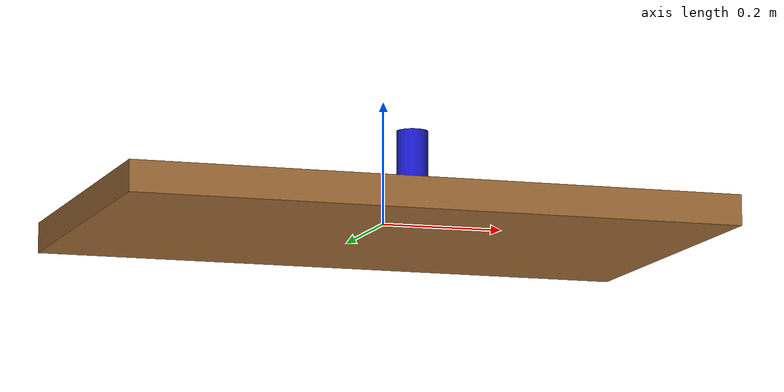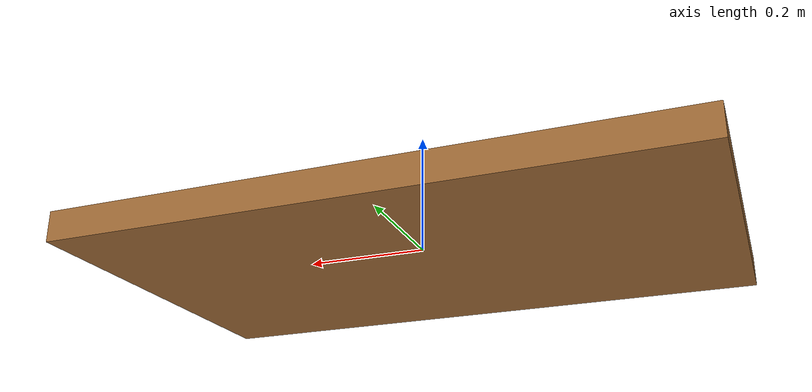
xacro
<?xml version="1.0"?>
<robot xmlns:xacro="http://www.ros.org/wiki/xacro" name="workspace_objects">

  <link name="table_link">
    <visual>
      <geometry><box size="1.0 0.6 0.05"/></geometry>
      <origin xyz="0 0 0" rpy="0 0 0"/>
      <material name="brown">
        <color rgba="0.6 0.4 0.2 1.0"/>
      </material>
    </visual>
    <collision>
      <geometry><box size="1.0 0.6 0.05"/></geometry>
      <origin xyz="0 0 0" rpy="0 0 0"/>
    </collision>
    <inertial>
      <mass value="50.0"/>
      <inertia ixx="2.125" ixy="0.0" ixz="0.0" iyy="4.175" iyz="0.0" izz="6.25"/>
    </inertial>
  </link>

  <!-- Cube 1: on table at (0.0, 0.15, 0.05) relative to table center -->
  <link name="cube_1_link">
    <visual>
      <geometry><box size="0.05 0.05 0.05"/></geometry>
      <origin xyz="0 0 0" rpy="0 0 0"/>
      <material name="red">
        <color rgba="0.8 0.1 0.1 1.0"/>
      </material>
    </visual>
    <collision>
      <geometry><box size="0.05 0.05 0.05"/></geometry>
      <origin xyz="0 0 0" rpy="0 0 0"/>
    </collision>
    <inertial>
      <mass value="0.1"/>
      <inertia ixx="4.16e-5" ixy="0.0" ixz="0.0" iyy="4.16e-5" iyz="0.0" izz="4.16e-5"/>
    </inertial>
  </link>

  <joint name="table_to_cube_1" type="fixed">
    <parent link="table_link"/>
    <child link="cube_1_link"/>
    <origin xyz="0.0 0.15 0.05" rpy="0 0 0"/>
  </joint>

  <!-- Cylinder 1: on table at (0.0, -0.15, 0.075) relative to table center -->
  <link name="cylinder_1_link">
    <visual>
      <geometry><cylinder radius="0.025" length="0.1"/></geometry>
      <origin xyz="0 0 0" rpy="0 0 0"/>
      <material name="blue">
        <color rgba="0.1 0.1 0.8 1.0"/>
      </material>
    </visual>
    <collision>
      <geometry><cylinder radius="0.025" length="0.1"/></geometry>
      <origin xyz="0 0 0" rpy="0 0 0"/>
    </collision>
    <inertial>
      <mass value="0.05"/>
      <inertia ixx="4.6e-5" ixy="0.0" ixz="0.0" iyy="4.6e-5" iyz="0.0" izz="1.56e-5"/>
    </inertial>
  </link>

  <joint name="table_to_cylinder_1" type="fixed">
    <parent link="table_link"/>
    <child link="cylinder_1_link"/>
    <origin xyz="0.0 -0.15 0.075" rpy="0 0 0"/>
  </joint>

</robot>
